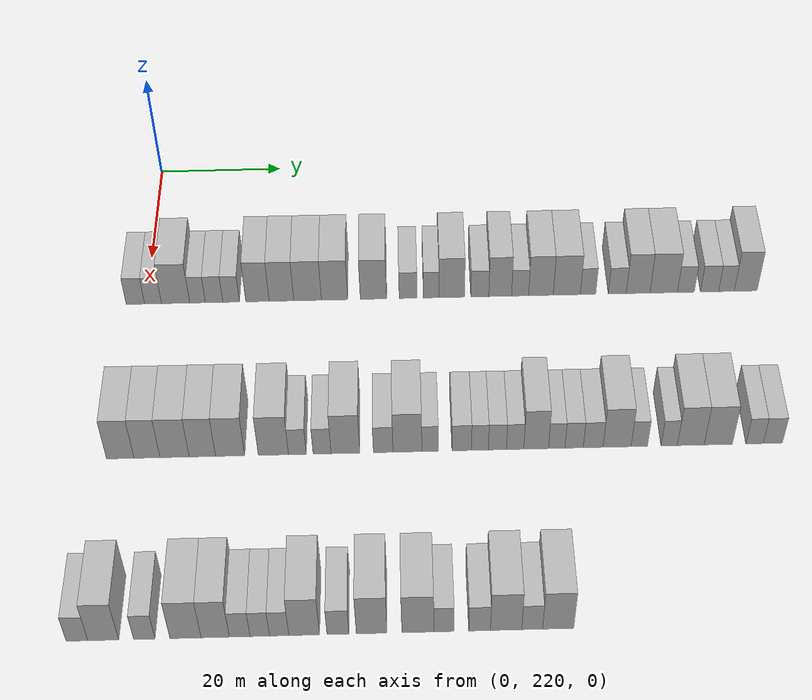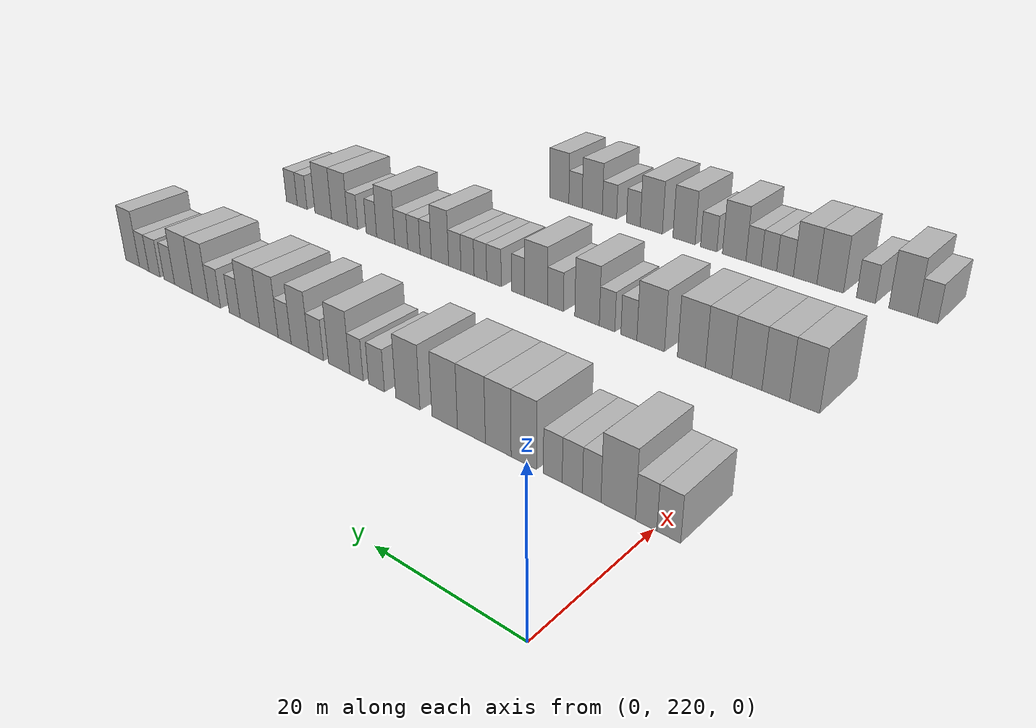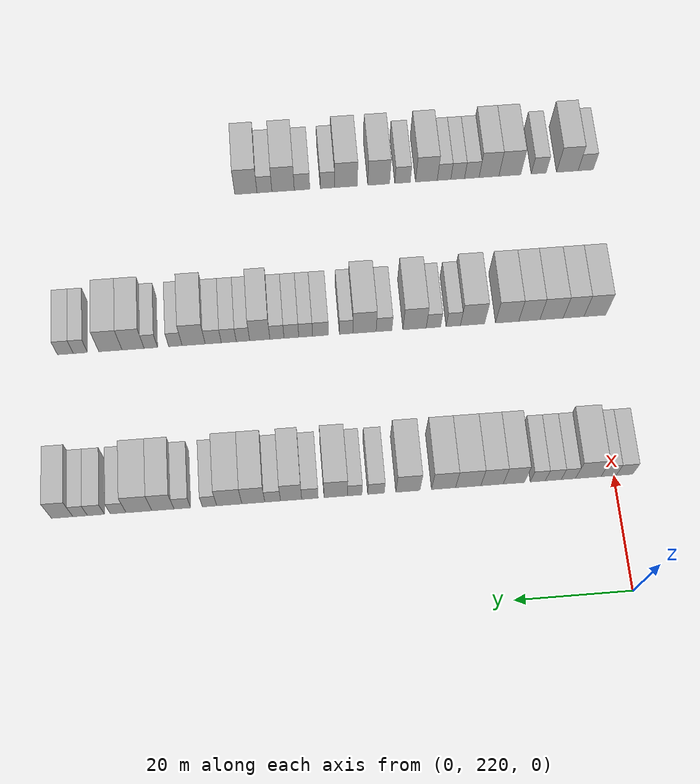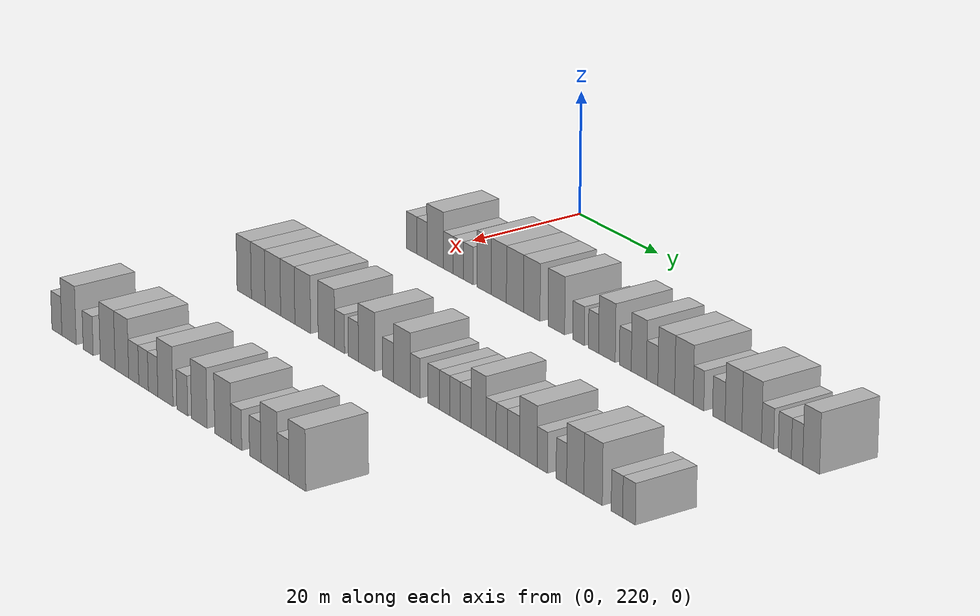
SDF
<sdf version="1.6">
 <world name="default">
  <model name="building_154">
   <static>1</static>
   <pose>25.0000 218.2230 0 0.000000 0.000000 0.000000</pose>
   <link name="link">
    <pose>0 0 3.00 0 0 0</pose>
    <collision name="collision"><geometry><box><size>10.0000 2.8841 6.0000</size></box></geometry></collision>
    <visual name="visual">
     <cast_shadows>0</cast_shadows>
     <geometry><box><size>10.0000 2.8841 6.0000</size></box></geometry>
     <material>
      <script>
       <uri>model://HANNAS_wall/materials/scripts</uri>
       <uri>model://HANNAS_wall/materials/textures</uri>
       <name>vrc/HANNAS_wall</name>
      </script>
     </material>
    </visual>
   </link>
  </model>
  <model name="building_155">
   <static>1</static>
   <pose>25.0000 220.9962 0 0.000000 0.000000 0.000000</pose>
   <link name="link">
    <pose>0 0 3.00 0 0 0</pose>
    <collision name="collision"><geometry><box><size>10.0000 2.6622 6.0000</size></box></geometry></collision>
    <visual name="visual">
     <cast_shadows>0</cast_shadows>
     <geometry><box><size>10.0000 2.6622 6.0000</size></box></geometry>
     <material>
      <script>
       <uri>model://HANNAS_wall/materials/scripts</uri>
       <uri>model://HANNAS_wall/materials/textures</uri>
       <name>vrc/HANNAS_wall</name>
      </script>
     </material>
    </visual>
   </link>
  </model>
  <model name="building_156">
   <static>1</static>
   <pose>25.0000 224.5481 0 0.000000 0.000000 0.000000</pose>
   <link name="link">
    <pose>0 0 4.50 0 0 0</pose>
    <collision name="collision"><geometry><box><size>10.0000 4.4416 9.0000</size></box></geometry></collision>
    <visual name="visual">
     <cast_shadows>0</cast_shadows>
     <geometry><box><size>10.0000 4.4416 9.0000</size></box></geometry>
     <material>
      <script>
       <uri>model://HANNAS_wall/materials/scripts</uri>
       <uri>model://HANNAS_wall/materials/textures</uri>
       <name>vrc/HANNAS_wall</name>
      </script>
     </material>
    </visual>
   </link>
  </model>
  <model name="building_157">
   <static>1</static>
   <pose>25.0000 228.0011 0 0.000000 0.000000 0.000000</pose>
   <link name="link">
    <pose>0 0 3.00 0 0 0</pose>
    <collision name="collision"><geometry><box><size>10.0000 2.4644 6.0000</size></box></geometry></collision>
    <visual name="visual">
     <cast_shadows>0</cast_shadows>
     <geometry><box><size>10.0000 2.4644 6.0000</size></box></geometry>
     <material>
      <script>
       <uri>model://HANNAS_wall/materials/scripts</uri>
       <uri>model://HANNAS_wall/materials/textures</uri>
       <name>vrc/HANNAS_wall</name>
      </script>
     </material>
    </visual>
   </link>
  </model>
  <model name="building_158">
   <static>1</static>
   <pose>25.0000 230.6134 0 0.000000 0.000000 0.000000</pose>
   <link name="link">
    <pose>0 0 3.00 0 0 0</pose>
    <collision name="collision"><geometry><box><size>10.0000 2.7602 6.0000</size></box></geometry></collision>
    <visual name="visual">
     <cast_shadows>0</cast_shadows>
     <geometry><box><size>10.0000 2.7602 6.0000</size></box></geometry>
     <material>
      <script>
       <uri>model://HANNAS_wall/materials/scripts</uri>
       <uri>model://HANNAS_wall/materials/textures</uri>
       <name>vrc/HANNAS_wall</name>
      </script>
     </material>
    </visual>
   </link>
  </model>
  <model name="building_159">
   <static>1</static>
   <pose>25.0000 233.3047 0 0.000000 0.000000 0.000000</pose>
   <link name="link">
    <pose>0 0 3.00 0 0 0</pose>
    <collision name="collision"><geometry><box><size>10.0000 2.6224 6.0000</size></box></geometry></collision>
    <visual name="visual">
     <cast_shadows>0</cast_shadows>
     <geometry><box><size>10.0000 2.6224 6.0000</size></box></geometry>
     <material>
      <script>
       <uri>model://HANNAS_wall/materials/scripts</uri>
       <uri>model://HANNAS_wall/materials/textures</uri>
       <name>vrc/HANNAS_wall</name>
      </script>
     </material>
    </visual>
   </link>
  </model>
  <model name="building_160">
   <static>1</static>
   <pose>25.0000 237.4575 0 0.000000 0.000000 0.000000</pose>
   <link name="link">
    <pose>0 0 4.50 0 0 0</pose>
    <collision name="collision"><geometry><box><size>10.0000 3.6833 9.0000</size></box></geometry></collision>
    <visual name="visual">
     <cast_shadows>0</cast_shadows>
     <geometry><box><size>10.0000 3.6833 9.0000</size></box></geometry>
     <material>
      <script>
       <uri>model://HANNAS_wall/materials/scripts</uri>
       <uri>model://HANNAS_wall/materials/textures</uri>
       <name>vrc/HANNAS_wall</name>
      </script>
     </material>
    </visual>
   </link>
  </model>
  <model name="building_161">
   <static>1</static>
   <pose>25.0000 241.2378 0 0.000000 0.000000 0.000000</pose>
   <link name="link">
    <pose>0 0 4.50 0 0 0</pose>
    <collision name="collision"><geometry><box><size>10.0000 3.8772 9.0000</size></box></geometry></collision>
    <visual name="visual">
     <cast_shadows>0</cast_shadows>
     <geometry><box><size>10.0000 3.8772 9.0000</size></box></geometry>
     <material>
      <script>
       <uri>model://HANNAS_wall/materials/scripts</uri>
       <uri>model://HANNAS_wall/materials/textures</uri>
       <name>vrc/HANNAS_wall</name>
      </script>
     </material>
    </visual>
   </link>
  </model>
  <model name="building_162">
   <static>1</static>
   <pose>25.0000 245.3619 0 0.000000 0.000000 0.000000</pose>
   <link name="link">
    <pose>0 0 4.50 0 0 0</pose>
    <collision name="collision"><geometry><box><size>10.0000 4.3710 9.0000</size></box></geometry></collision>
    <visual name="visual">
     <cast_shadows>0</cast_shadows>
     <geometry><box><size>10.0000 4.3710 9.0000</size></box></geometry>
     <material>
      <script>
       <uri>model://HANNAS_wall/materials/scripts</uri>
       <uri>model://HANNAS_wall/materials/textures</uri>
       <name>vrc/HANNAS_wall</name>
      </script>
     </material>
    </visual>
   </link>
  </model>
  <model name="building_163">
   <static>1</static>
   <pose>25.0000 249.6218 0 0.000000 0.000000 0.000000</pose>
   <link name="link">
    <pose>0 0 4.50 0 0 0</pose>
    <collision name="collision"><geometry><box><size>10.0000 4.1489 9.0000</size></box></geometry></collision>
    <visual name="visual">
     <cast_shadows>0</cast_shadows>
     <geometry><box><size>10.0000 4.1489 9.0000</size></box></geometry>
     <material>
      <script>
       <uri>model://HANNAS_wall/materials/scripts</uri>
       <uri>model://HANNAS_wall/materials/textures</uri>
       <name>vrc/HANNAS_wall</name>
      </script>
     </material>
    </visual>
   </link>
  </model>
  <model name="building_164">
   <static>1</static>
   <pose>25.0000 255.7723 0 0.000000 0.000000 0.000000</pose>
   <link name="link">
    <pose>0 0 4.50 0 0 0</pose>
    <collision name="collision"><geometry><box><size>10.0000 4.1519 9.0000</size></box></geometry></collision>
    <visual name="visual">
     <cast_shadows>0</cast_shadows>
     <geometry><box><size>10.0000 4.1519 9.0000</size></box></geometry>
     <material>
      <script>
       <uri>model://HANNAS_wall/materials/scripts</uri>
       <uri>model://HANNAS_wall/materials/textures</uri>
       <name>vrc/HANNAS_wall</name>
      </script>
     </material>
    </visual>
   </link>
  </model>
  <model name="building_165">
   <static>1</static>
   <pose>25.0000 261.2665 0 0.000000 0.000000 0.000000</pose>
   <link name="link">
    <pose>0 0 3.00 0 0 0</pose>
    <collision name="collision"><geometry><box><size>10.0000 2.8367 6.0000</size></box></geometry></collision>
    <visual name="visual">
     <cast_shadows>0</cast_shadows>
     <geometry><box><size>10.0000 2.8367 6.0000</size></box></geometry>
     <material>
      <script>
       <uri>model://HANNAS_wall/materials/scripts</uri>
       <uri>model://HANNAS_wall/materials/textures</uri>
       <name>vrc/HANNAS_wall</name>
      </script>
     </material>
    </visual>
   </link>
  </model>
  <model name="building_166">
   <static>1</static>
   <pose>25.0000 264.9269 0 0.000000 0.000000 0.000000</pose>
   <link name="link">
    <pose>0 0 3.00 0 0 0</pose>
    <collision name="collision"><geometry><box><size>10.0000 2.4840 6.0000</size></box></geometry></collision>
    <visual name="visual">
     <cast_shadows>0</cast_shadows>
     <geometry><box><size>10.0000 2.4840 6.0000</size></box></geometry>
     <material>
      <script>
       <uri>model://HANNAS_wall/materials/scripts</uri>
       <uri>model://HANNAS_wall/materials/textures</uri>
       <name>vrc/HANNAS_wall</name>
      </script>
     </material>
    </visual>
   </link>
  </model>
  <model name="building_167">
   <static>1</static>
   <pose>25.0000 268.1810 0 0.000000 0.000000 0.000000</pose>
   <link name="link">
    <pose>0 0 4.50 0 0 0</pose>
    <collision name="collision"><geometry><box><size>10.0000 4.0242 9.0000</size></box></geometry></collision>
    <visual name="visual">
     <cast_shadows>0</cast_shadows>
     <geometry><box><size>10.0000 4.0242 9.0000</size></box></geometry>
     <material>
      <script>
       <uri>model://HANNAS_wall/materials/scripts</uri>
       <uri>model://HANNAS_wall/materials/textures</uri>
       <name>vrc/HANNAS_wall</name>
      </script>
     </material>
    </visual>
   </link>
  </model>
  <model name="building_168">
   <static>1</static>
   <pose>25.0000 272.6107 0 0.000000 0.000000 0.000000</pose>
   <link name="link">
    <pose>0 0 3.00 0 0 0</pose>
    <collision name="collision"><geometry><box><size>10.0000 2.8353 6.0000</size></box></geometry></collision>
    <visual name="visual">
     <cast_shadows>0</cast_shadows>
     <geometry><box><size>10.0000 2.8353 6.0000</size></box></geometry>
     <material>
      <script>
       <uri>model://HANNAS_wall/materials/scripts</uri>
       <uri>model://HANNAS_wall/materials/textures</uri>
       <name>vrc/HANNAS_wall</name>
      </script>
     </material>
    </visual>
   </link>
  </model>
  <model name="building_169">
   <static>1</static>
   <pose>25.0000 275.8364 0 0.000000 0.000000 0.000000</pose>
   <link name="link">
    <pose>0 0 4.50 0 0 0</pose>
    <collision name="collision"><geometry><box><size>10.0000 3.6160 9.0000</size></box></geometry></collision>
    <visual name="visual">
     <cast_shadows>0</cast_shadows>
     <geometry><box><size>10.0000 3.6160 9.0000</size></box></geometry>
     <material>
      <script>
       <uri>model://HANNAS_wall/materials/scripts</uri>
       <uri>model://HANNAS_wall/materials/textures</uri>
       <name>vrc/HANNAS_wall</name>
      </script>
     </material>
    </visual>
   </link>
  </model>
  <model name="building_170">
   <static>1</static>
   <pose>25.0000 278.9938 0 0.000000 0.000000 0.000000</pose>
   <link name="link">
    <pose>0 0 3.00 0 0 0</pose>
    <collision name="collision"><geometry><box><size>10.0000 2.6990 6.0000</size></box></geometry></collision>
    <visual name="visual">
     <cast_shadows>0</cast_shadows>
     <geometry><box><size>10.0000 2.6990 6.0000</size></box></geometry>
     <material>
      <script>
       <uri>model://HANNAS_wall/materials/scripts</uri>
       <uri>model://HANNAS_wall/materials/textures</uri>
       <name>vrc/HANNAS_wall</name>
      </script>
     </material>
    </visual>
   </link>
  </model>
  <model name="building_171">
   <static>1</static>
   <pose>25.0000 282.3025 0 0.000000 0.000000 0.000000</pose>
   <link name="link">
    <pose>0 0 4.50 0 0 0</pose>
    <collision name="collision"><geometry><box><size>10.0000 3.9183 9.0000</size></box></geometry></collision>
    <visual name="visual">
     <cast_shadows>0</cast_shadows>
     <geometry><box><size>10.0000 3.9183 9.0000</size></box></geometry>
     <material>
      <script>
       <uri>model://HANNAS_wall/materials/scripts</uri>
       <uri>model://HANNAS_wall/materials/textures</uri>
       <name>vrc/HANNAS_wall</name>
      </script>
     </material>
    </visual>
   </link>
  </model>
  <model name="building_172">
   <static>1</static>
   <pose>25.0000 286.4118 0 0.000000 0.000000 0.000000</pose>
   <link name="link">
    <pose>0 0 4.50 0 0 0</pose>
    <collision name="collision"><geometry><box><size>10.0000 4.3003 9.0000</size></box></geometry></collision>
    <visual name="visual">
     <cast_shadows>0</cast_shadows>
     <geometry><box><size>10.0000 4.3003 9.0000</size></box></geometry>
     <material>
      <script>
       <uri>model://HANNAS_wall/materials/scripts</uri>
       <uri>model://HANNAS_wall/materials/textures</uri>
       <name>vrc/HANNAS_wall</name>
      </script>
     </material>
    </visual>
   </link>
  </model>
  <model name="building_173">
   <static>1</static>
   <pose>25.0000 289.7814 0 0.000000 0.000000 0.000000</pose>
   <link name="link">
    <pose>0 0 3.00 0 0 0</pose>
    <collision name="collision"><geometry><box><size>10.0000 2.4388 6.0000</size></box></geometry></collision>
    <visual name="visual">
     <cast_shadows>0</cast_shadows>
     <geometry><box><size>10.0000 2.4388 6.0000</size></box></geometry>
     <material>
      <script>
       <uri>model://HANNAS_wall/materials/scripts</uri>
       <uri>model://HANNAS_wall/materials/textures</uri>
       <name>vrc/HANNAS_wall</name>
      </script>
     </material>
    </visual>
   </link>
  </model>
  <model name="building_174">
   <static>1</static>
   <pose>25.0000 294.4239 0 0.000000 0.000000 0.000000</pose>
   <link name="link">
    <pose>0 0 3.00 0 0 0</pose>
    <collision name="collision"><geometry><box><size>10.0000 2.8463 6.0000</size></box></geometry></collision>
    <visual name="visual">
     <cast_shadows>0</cast_shadows>
     <geometry><box><size>10.0000 2.8463 6.0000</size></box></geometry>
     <material>
      <script>
       <uri>model://HANNAS_wall/materials/scripts</uri>
       <uri>model://HANNAS_wall/materials/textures</uri>
       <name>vrc/HANNAS_wall</name>
      </script>
     </material>
    </visual>
   </link>
  </model>
  <model name="building_175">
   <static>1</static>
   <pose>25.0000 297.7362 0 0.000000 0.000000 0.000000</pose>
   <link name="link">
    <pose>0 0 4.50 0 0 0</pose>
    <collision name="collision"><geometry><box><size>10.0000 3.7783 9.0000</size></box></geometry></collision>
    <visual name="visual">
     <cast_shadows>0</cast_shadows>
     <geometry><box><size>10.0000 3.7783 9.0000</size></box></geometry>
     <material>
      <script>
       <uri>model://HANNAS_wall/materials/scripts</uri>
       <uri>model://HANNAS_wall/materials/textures</uri>
       <name>vrc/HANNAS_wall</name>
      </script>
     </material>
    </visual>
   </link>
  </model>
  <model name="building_176">
   <static>1</static>
   <pose>25.0000 301.8205 0 0.000000 0.000000 0.000000</pose>
   <link name="link">
    <pose>0 0 4.50 0 0 0</pose>
    <collision name="collision"><geometry><box><size>10.0000 4.3902 9.0000</size></box></geometry></collision>
    <visual name="visual">
     <cast_shadows>0</cast_shadows>
     <geometry><box><size>10.0000 4.3902 9.0000</size></box></geometry>
     <material>
      <script>
       <uri>model://HANNAS_wall/materials/scripts</uri>
       <uri>model://HANNAS_wall/materials/textures</uri>
       <name>vrc/HANNAS_wall</name>
      </script>
     </material>
    </visual>
   </link>
  </model>
  <model name="building_177">
   <static>1</static>
   <pose>25.0000 305.3561 0 0.000000 0.000000 0.000000</pose>
   <link name="link">
    <pose>0 0 3.00 0 0 0</pose>
    <collision name="collision"><geometry><box><size>10.0000 2.6810 6.0000</size></box></geometry></collision>
    <visual name="visual">
     <cast_shadows>0</cast_shadows>
     <geometry><box><size>10.0000 2.6810 6.0000</size></box></geometry>
     <material>
      <script>
       <uri>model://HANNAS_wall/materials/scripts</uri>
       <uri>model://HANNAS_wall/materials/textures</uri>
       <name>vrc/HANNAS_wall</name>
      </script>
     </material>
    </visual>
   </link>
  </model>
  <model name="building_178">
   <static>1</static>
   <pose>25.0000 309.1369 0 0.000000 0.000000 0.000000</pose>
   <link name="link">
    <pose>0 0 3.00 0 0 0</pose>
    <collision name="collision"><geometry><box><size>10.0000 2.8807 6.0000</size></box></geometry></collision>
    <visual name="visual">
     <cast_shadows>0</cast_shadows>
     <geometry><box><size>10.0000 2.8807 6.0000</size></box></geometry>
     <material>
      <script>
       <uri>model://HANNAS_wall/materials/scripts</uri>
       <uri>model://HANNAS_wall/materials/textures</uri>
       <name>vrc/HANNAS_wall</name>
      </script>
     </material>
    </visual>
   </link>
  </model>
  <model name="building_179">
   <static>1</static>
   <pose>25.0000 311.8172 0 0.000000 0.000000 0.000000</pose>
   <link name="link">
    <pose>0 0 3.00 0 0 0</pose>
    <collision name="collision"><geometry><box><size>10.0000 2.4800 6.0000</size></box></geometry></collision>
    <visual name="visual">
     <cast_shadows>0</cast_shadows>
     <geometry><box><size>10.0000 2.4800 6.0000</size></box></geometry>
     <material>
      <script>
       <uri>model://HANNAS_wall/materials/scripts</uri>
       <uri>model://HANNAS_wall/materials/textures</uri>
       <name>vrc/HANNAS_wall</name>
      </script>
     </material>
    </visual>
   </link>
  </model>
  <model name="building_180">
   <static>1</static>
   <pose>25.0000 314.8804 0 0.000000 0.000000 0.000000</pose>
   <link name="link">
    <pose>0 0 4.50 0 0 0</pose>
    <collision name="collision"><geometry><box><size>10.0000 3.6463 9.0000</size></box></geometry></collision>
    <visual name="visual">
     <cast_shadows>0</cast_shadows>
     <geometry><box><size>10.0000 3.6463 9.0000</size></box></geometry>
     <material>
      <script>
       <uri>model://HANNAS_wall/materials/scripts</uri>
       <uri>model://HANNAS_wall/materials/textures</uri>
       <name>vrc/HANNAS_wall</name>
      </script>
     </material>
    </visual>
   </link>
  </model>
  <model name="building_389">
   <static>1</static>
   <pose>55.0000 218.7644 0 0.000000 0.000000 0.000000</pose>
   <link name="link">
    <pose>0 0 4.50 0 0 0</pose>
    <collision name="collision"><geometry><box><size>10.0000 3.9884 9.0000</size></box></geometry></collision>
    <visual name="visual">
     <cast_shadows>0</cast_shadows>
     <geometry><box><size>10.0000 3.9884 9.0000</size></box></geometry>
     <material>
      <script>
       <uri>model://HANNAS_wall/materials/scripts</uri>
       <uri>model://HANNAS_wall/materials/textures</uri>
       <name>vrc/HANNAS_wall</name>
      </script>
     </material>
    </visual>
   </link>
  </model>
  <model name="building_390">
   <static>1</static>
   <pose>55.0000 222.6528 0 0.000000 0.000000 0.000000</pose>
   <link name="link">
    <pose>0 0 4.50 0 0 0</pose>
    <collision name="collision"><geometry><box><size>10.0000 3.7884 9.0000</size></box></geometry></collision>
    <visual name="visual">
     <cast_shadows>0</cast_shadows>
     <geometry><box><size>10.0000 3.7884 9.0000</size></box></geometry>
     <material>
      <script>
       <uri>model://HANNAS_wall/materials/scripts</uri>
       <uri>model://HANNAS_wall/materials/textures</uri>
       <name>vrc/HANNAS_wall</name>
      </script>
     </material>
    </visual>
   </link>
  </model>
  <model name="building_391">
   <static>1</static>
   <pose>55.0000 226.6769 0 0.000000 0.000000 0.000000</pose>
   <link name="link">
    <pose>0 0 4.50 0 0 0</pose>
    <collision name="collision"><geometry><box><size>10.0000 4.2598 9.0000</size></box></geometry></collision>
    <visual name="visual">
     <cast_shadows>0</cast_shadows>
     <geometry><box><size>10.0000 4.2598 9.0000</size></box></geometry>
     <material>
      <script>
       <uri>model://HANNAS_wall/materials/scripts</uri>
       <uri>model://HANNAS_wall/materials/textures</uri>
       <name>vrc/HANNAS_wall</name>
      </script>
     </material>
    </visual>
   </link>
  </model>
  <model name="building_392">
   <static>1</static>
   <pose>55.0000 230.7306 0 0.000000 0.000000 0.000000</pose>
   <link name="link">
    <pose>0 0 4.50 0 0 0</pose>
    <collision name="collision"><geometry><box><size>10.0000 3.8476 9.0000</size></box></geometry></collision>
    <visual name="visual">
     <cast_shadows>0</cast_shadows>
     <geometry><box><size>10.0000 3.8476 9.0000</size></box></geometry>
     <material>
      <script>
       <uri>model://HANNAS_wall/materials/scripts</uri>
       <uri>model://HANNAS_wall/materials/textures</uri>
       <name>vrc/HANNAS_wall</name>
      </script>
     </material>
    </visual>
   </link>
  </model>
  <model name="building_393">
   <static>1</static>
   <pose>55.0000 234.7704 0 0.000000 0.000000 0.000000</pose>
   <link name="link">
    <pose>0 0 4.50 0 0 0</pose>
    <collision name="collision"><geometry><box><size>10.0000 4.2321 9.0000</size></box></geometry></collision>
    <visual name="visual">
     <cast_shadows>0</cast_shadows>
     <geometry><box><size>10.0000 4.2321 9.0000</size></box></geometry>
     <material>
      <script>
       <uri>model://HANNAS_wall/materials/scripts</uri>
       <uri>model://HANNAS_wall/materials/textures</uri>
       <name>vrc/HANNAS_wall</name>
      </script>
     </material>
    </visual>
   </link>
  </model>
  <model name="building_394">
   <static>1</static>
   <pose>55.0000 241.0798 0 0.000000 0.000000 0.000000</pose>
   <link name="link">
    <pose>0 0 4.50 0 0 0</pose>
    <collision name="collision"><geometry><box><size>10.0000 4.3866 9.0000</size></box></geometry></collision>
    <visual name="visual">
     <cast_shadows>0</cast_shadows>
     <geometry><box><size>10.0000 4.3866 9.0000</size></box></geometry>
     <material>
      <script>
       <uri>model://HANNAS_wall/materials/scripts</uri>
       <uri>model://HANNAS_wall/materials/textures</uri>
       <name>vrc/HANNAS_wall</name>
      </script>
     </material>
    </visual>
   </link>
  </model>
  <model name="building_395">
   <static>1</static>
   <pose>55.0000 244.5739 0 0.000000 0.000000 0.000000</pose>
   <link name="link">
    <pose>0 0 3.00 0 0 0</pose>
    <collision name="collision"><geometry><box><size>10.0000 2.6015 6.0000</size></box></geometry></collision>
    <visual name="visual">
     <cast_shadows>0</cast_shadows>
     <geometry><box><size>10.0000 2.6015 6.0000</size></box></geometry>
     <material>
      <script>
       <uri>model://HANNAS_wall/materials/scripts</uri>
       <uri>model://HANNAS_wall/materials/textures</uri>
       <name>vrc/HANNAS_wall</name>
      </script>
     </material>
    </visual>
   </link>
  </model>
  <model name="building_396">
   <static>1</static>
   <pose>55.0000 248.1784 0 0.000000 0.000000 0.000000</pose>
   <link name="link">
    <pose>0 0 3.00 0 0 0</pose>
    <collision name="collision"><geometry><box><size>10.0000 2.6076 6.0000</size></box></geometry></collision>
    <visual name="visual">
     <cast_shadows>0</cast_shadows>
     <geometry><box><size>10.0000 2.6076 6.0000</size></box></geometry>
     <material>
      <script>
       <uri>model://HANNAS_wall/materials/scripts</uri>
       <uri>model://HANNAS_wall/materials/textures</uri>
       <name>vrc/HANNAS_wall</name>
      </script>
     </material>
    </visual>
   </link>
  </model>
  <model name="building_397">
   <static>1</static>
   <pose>55.0000 251.5910 0 0.000000 0.000000 0.000000</pose>
   <link name="link">
    <pose>0 0 4.50 0 0 0</pose>
    <collision name="collision"><geometry><box><size>10.0000 4.2177 9.0000</size></box></geometry></collision>
    <visual name="visual">
     <cast_shadows>0</cast_shadows>
     <geometry><box><size>10.0000 4.2177 9.0000</size></box></geometry>
     <material>
      <script>
       <uri>model://HANNAS_wall/materials/scripts</uri>
       <uri>model://HANNAS_wall/materials/textures</uri>
       <name>vrc/HANNAS_wall</name>
      </script>
     </material>
    </visual>
   </link>
  </model>
  <model name="building_398">
   <static>1</static>
   <pose>55.0000 257.1286 0 0.000000 0.000000 0.000000</pose>
   <link name="link">
    <pose>0 0 3.00 0 0 0</pose>
    <collision name="collision"><geometry><box><size>10.0000 2.8575 6.0000</size></box></geometry></collision>
    <visual name="visual">
     <cast_shadows>0</cast_shadows>
     <geometry><box><size>10.0000 2.8575 6.0000</size></box></geometry>
     <material>
      <script>
       <uri>model://HANNAS_wall/materials/scripts</uri>
       <uri>model://HANNAS_wall/materials/textures</uri>
       <name>vrc/HANNAS_wall</name>
      </script>
     </material>
    </visual>
   </link>
  </model>
  <model name="building_399">
   <static>1</static>
   <pose>55.0000 260.6683 0 0.000000 0.000000 0.000000</pose>
   <link name="link">
    <pose>0 0 4.50 0 0 0</pose>
    <collision name="collision"><geometry><box><size>10.0000 4.2219 9.0000</size></box></geometry></collision>
    <visual name="visual">
     <cast_shadows>0</cast_shadows>
     <geometry><box><size>10.0000 4.2219 9.0000</size></box></geometry>
     <material>
      <script>
       <uri>model://HANNAS_wall/materials/scripts</uri>
       <uri>model://HANNAS_wall/materials/textures</uri>
       <name>vrc/HANNAS_wall</name>
      </script>
     </material>
    </visual>
   </link>
  </model>
  <model name="building_400">
   <static>1</static>
   <pose>55.0000 263.9831 0 0.000000 0.000000 0.000000</pose>
   <link name="link">
    <pose>0 0 3.00 0 0 0</pose>
    <collision name="collision"><geometry><box><size>10.0000 2.4076 6.0000</size></box></geometry></collision>
    <visual name="visual">
     <cast_shadows>0</cast_shadows>
     <geometry><box><size>10.0000 2.4076 6.0000</size></box></geometry>
     <material>
      <script>
       <uri>model://HANNAS_wall/materials/scripts</uri>
       <uri>model://HANNAS_wall/materials/textures</uri>
       <name>vrc/HANNAS_wall</name>
      </script>
     </material>
    </visual>
   </link>
  </model>
  <model name="building_401">
   <static>1</static>
   <pose>55.0000 268.6128 0 0.000000 0.000000 0.000000</pose>
   <link name="link">
    <pose>0 0 3.00 0 0 0</pose>
    <collision name="collision"><geometry><box><size>10.0000 2.8517 6.0000</size></box></geometry></collision>
    <visual name="visual">
     <cast_shadows>0</cast_shadows>
     <geometry><box><size>10.0000 2.8517 6.0000</size></box></geometry>
     <material>
      <script>
       <uri>model://HANNAS_wall/materials/scripts</uri>
       <uri>model://HANNAS_wall/materials/textures</uri>
       <name>vrc/HANNAS_wall</name>
      </script>
     </material>
    </visual>
   </link>
  </model>
  <model name="building_402">
   <static>1</static>
   <pose>55.0000 271.2771 0 0.000000 0.000000 0.000000</pose>
   <link name="link">
    <pose>0 0 3.00 0 0 0</pose>
    <collision name="collision"><geometry><box><size>10.0000 2.4768 6.0000</size></box></geometry></collision>
    <visual name="visual">
     <cast_shadows>0</cast_shadows>
     <geometry><box><size>10.0000 2.4768 6.0000</size></box></geometry>
     <material>
      <script>
       <uri>model://HANNAS_wall/materials/scripts</uri>
       <uri>model://HANNAS_wall/materials/textures</uri>
       <name>vrc/HANNAS_wall</name>
      </script>
     </material>
    </visual>
   </link>
  </model>
  <model name="building_403">
   <static>1</static>
   <pose>55.0000 273.8433 0 0.000000 0.000000 0.000000</pose>
   <link name="link">
    <pose>0 0 3.00 0 0 0</pose>
    <collision name="collision"><geometry><box><size>10.0000 2.6555 6.0000</size></box></geometry></collision>
    <visual name="visual">
     <cast_shadows>0</cast_shadows>
     <geometry><box><size>10.0000 2.6555 6.0000</size></box></geometry>
     <material>
      <script>
       <uri>model://HANNAS_wall/materials/scripts</uri>
       <uri>model://HANNAS_wall/materials/textures</uri>
       <name>vrc/HANNAS_wall</name>
      </script>
     </material>
    </visual>
   </link>
  </model>
  <model name="building_404">
   <static>1</static>
   <pose>55.0000 276.4446 0 0.000000 0.000000 0.000000</pose>
   <link name="link">
    <pose>0 0 3.00 0 0 0</pose>
    <collision name="collision"><geometry><box><size>10.0000 2.5472 6.0000</size></box></geometry></collision>
    <visual name="visual">
     <cast_shadows>0</cast_shadows>
     <geometry><box><size>10.0000 2.5472 6.0000</size></box></geometry>
     <material>
      <script>
       <uri>model://HANNAS_wall/materials/scripts</uri>
       <uri>model://HANNAS_wall/materials/textures</uri>
       <name>vrc/HANNAS_wall</name>
      </script>
     </material>
    </visual>
   </link>
  </model>
  <model name="building_405">
   <static>1</static>
   <pose>55.0000 279.5298 0 0.000000 0.000000 0.000000</pose>
   <link name="link">
    <pose>0 0 4.50 0 0 0</pose>
    <collision name="collision"><geometry><box><size>10.0000 3.6233 9.0000</size></box></geometry></collision>
    <visual name="visual">
     <cast_shadows>0</cast_shadows>
     <geometry><box><size>10.0000 3.6233 9.0000</size></box></geometry>
     <material>
      <script>
       <uri>model://HANNAS_wall/materials/scripts</uri>
       <uri>model://HANNAS_wall/materials/textures</uri>
       <name>vrc/HANNAS_wall</name>
      </script>
     </material>
    </visual>
   </link>
  </model>
  <model name="building_406">
   <static>1</static>
   <pose>55.0000 282.5518 0 0.000000 0.000000 0.000000</pose>
   <link name="link">
    <pose>0 0 3.00 0 0 0</pose>
    <collision name="collision"><geometry><box><size>10.0000 2.4206 6.0000</size></box></geometry></collision>
    <visual name="visual">
     <cast_shadows>0</cast_shadows>
     <geometry><box><size>10.0000 2.4206 6.0000</size></box></geometry>
     <material>
      <script>
       <uri>model://HANNAS_wall/materials/scripts</uri>
       <uri>model://HANNAS_wall/materials/textures</uri>
       <name>vrc/HANNAS_wall</name>
      </script>
     </material>
    </visual>
   </link>
  </model>
  <model name="building_407">
   <static>1</static>
   <pose>55.0000 285.1061 0 0.000000 0.000000 0.000000</pose>
   <link name="link">
    <pose>0 0 3.00 0 0 0</pose>
    <collision name="collision"><geometry><box><size>10.0000 2.6879 6.0000</size></box></geometry></collision>
    <visual name="visual">
     <cast_shadows>0</cast_shadows>
     <geometry><box><size>10.0000 2.6879 6.0000</size></box></geometry>
     <material>
      <script>
       <uri>model://HANNAS_wall/materials/scripts</uri>
       <uri>model://HANNAS_wall/materials/textures</uri>
       <name>vrc/HANNAS_wall</name>
      </script>
     </material>
    </visual>
   </link>
  </model>
  <model name="building_408">
   <static>1</static>
   <pose>55.0000 287.8997 0 0.000000 0.000000 0.000000</pose>
   <link name="link">
    <pose>0 0 3.00 0 0 0</pose>
    <collision name="collision"><geometry><box><size>10.0000 2.8993 6.0000</size></box></geometry></collision>
    <visual name="visual">
     <cast_shadows>0</cast_shadows>
     <geometry><box><size>10.0000 2.8993 6.0000</size></box></geometry>
     <material>
      <script>
       <uri>model://HANNAS_wall/materials/scripts</uri>
       <uri>model://HANNAS_wall/materials/textures</uri>
       <name>vrc/HANNAS_wall</name>
      </script>
     </material>
    </visual>
   </link>
  </model>
  <model name="building_409">
   <static>1</static>
   <pose>55.0000 291.4169 0 0.000000 0.000000 0.000000</pose>
   <link name="link">
    <pose>0 0 4.50 0 0 0</pose>
    <collision name="collision"><geometry><box><size>10.0000 4.1351 9.0000</size></box></geometry></collision>
    <visual name="visual">
     <cast_shadows>0</cast_shadows>
     <geometry><box><size>10.0000 4.1351 9.0000</size></box></geometry>
     <material>
      <script>
       <uri>model://HANNAS_wall/materials/scripts</uri>
       <uri>model://HANNAS_wall/materials/textures</uri>
       <name>vrc/HANNAS_wall</name>
      </script>
     </material>
    </visual>
   </link>
  </model>
  <model name="building_410">
   <static>1</static>
   <pose>55.0000 294.6898 0 0.000000 0.000000 0.000000</pose>
   <link name="link">
    <pose>0 0 3.00 0 0 0</pose>
    <collision name="collision"><geometry><box><size>10.0000 2.4106 6.0000</size></box></geometry></collision>
    <visual name="visual">
     <cast_shadows>0</cast_shadows>
     <geometry><box><size>10.0000 2.4106 6.0000</size></box></geometry>
     <material>
      <script>
       <uri>model://HANNAS_wall/materials/scripts</uri>
       <uri>model://HANNAS_wall/materials/textures</uri>
       <name>vrc/HANNAS_wall</name>
      </script>
     </material>
    </visual>
   </link>
  </model>
  <model name="building_411">
   <static>1</static>
   <pose>55.0000 299.0987 0 0.000000 0.000000 0.000000</pose>
   <link name="link">
    <pose>0 0 3.00 0 0 0</pose>
    <collision name="collision"><geometry><box><size>10.0000 2.4072 6.0000</size></box></geometry></collision>
    <visual name="visual">
     <cast_shadows>0</cast_shadows>
     <geometry><box><size>10.0000 2.4072 6.0000</size></box></geometry>
     <material>
      <script>
       <uri>model://HANNAS_wall/materials/scripts</uri>
       <uri>model://HANNAS_wall/materials/textures</uri>
       <name>vrc/HANNAS_wall</name>
      </script>
     </material>
    </visual>
   </link>
  </model>
  <model name="building_412">
   <static>1</static>
   <pose>55.0000 302.2750 0 0.000000 0.000000 0.000000</pose>
   <link name="link">
    <pose>0 0 4.50 0 0 0</pose>
    <collision name="collision"><geometry><box><size>10.0000 3.9455 9.0000</size></box></geometry></collision>
    <visual name="visual">
     <cast_shadows>0</cast_shadows>
     <geometry><box><size>10.0000 3.9455 9.0000</size></box></geometry>
     <material>
      <script>
       <uri>model://HANNAS_wall/materials/scripts</uri>
       <uri>model://HANNAS_wall/materials/textures</uri>
       <name>vrc/HANNAS_wall</name>
      </script>
     </material>
    </visual>
   </link>
  </model>
  <model name="building_413">
   <static>1</static>
   <pose>55.0000 306.3298 0 0.000000 0.000000 0.000000</pose>
   <link name="link">
    <pose>0 0 4.50 0 0 0</pose>
    <collision name="collision"><geometry><box><size>10.0000 4.1641 9.0000</size></box></geometry></collision>
    <visual name="visual">
     <cast_shadows>0</cast_shadows>
     <geometry><box><size>10.0000 4.1641 9.0000</size></box></geometry>
     <material>
      <script>
       <uri>model://HANNAS_wall/materials/scripts</uri>
       <uri>model://HANNAS_wall/materials/textures</uri>
       <name>vrc/HANNAS_wall</name>
      </script>
     </material>
    </visual>
   </link>
  </model>
  <model name="building_414">
   <static>1</static>
   <pose>55.0000 311.6885 0 0.000000 0.000000 0.000000</pose>
   <link name="link">
    <pose>0 0 3.00 0 0 0</pose>
    <collision name="collision"><geometry><box><size>10.0000 2.5532 6.0000</size></box></geometry></collision>
    <visual name="visual">
     <cast_shadows>0</cast_shadows>
     <geometry><box><size>10.0000 2.5532 6.0000</size></box></geometry>
     <material>
      <script>
       <uri>model://HANNAS_wall/materials/scripts</uri>
       <uri>model://HANNAS_wall/materials/textures</uri>
       <name>vrc/HANNAS_wall</name>
      </script>
     </material>
    </visual>
   </link>
  </model>
  <model name="building_415">
   <static>1</static>
   <pose>55.0000 314.3787 0 0.000000 0.000000 0.000000</pose>
   <link name="link">
    <pose>0 0 3.00 0 0 0</pose>
    <collision name="collision"><geometry><box><size>10.0000 2.8274 6.0000</size></box></geometry></collision>
    <visual name="visual">
     <cast_shadows>0</cast_shadows>
     <geometry><box><size>10.0000 2.8274 6.0000</size></box></geometry>
     <material>
      <script>
       <uri>model://HANNAS_wall/materials/scripts</uri>
       <uri>model://HANNAS_wall/materials/textures</uri>
       <name>vrc/HANNAS_wall</name>
      </script>
     </material>
    </visual>
   </link>
  </model>
  <model name="building_617">
   <static>1</static>
   <pose>85.0000 215.9104 0 0.000000 0.000000 0.000000</pose>
   <link name="link">
    <pose>0 0 3.00 0 0 0</pose>
    <collision name="collision"><geometry><box><size>10.0000 2.8955 6.0000</size></box></geometry></collision>
    <visual name="visual">
     <cast_shadows>0</cast_shadows>
     <geometry><box><size>10.0000 2.8955 6.0000</size></box></geometry>
     <material>
      <script>
       <uri>model://HANNAS_wall/materials/scripts</uri>
       <uri>model://HANNAS_wall/materials/textures</uri>
       <name>vrc/HANNAS_wall</name>
      </script>
     </material>
    </visual>
   </link>
  </model>
  <model name="building_618">
   <static>1</static>
   <pose>85.0000 219.4191 0 0.000000 0.000000 0.000000</pose>
   <link name="link">
    <pose>0 0 4.50 0 0 0</pose>
    <collision name="collision"><geometry><box><size>10.0000 4.1219 9.0000</size></box></geometry></collision>
    <visual name="visual">
     <cast_shadows>0</cast_shadows>
     <geometry><box><size>10.0000 4.1219 9.0000</size></box></geometry>
     <material>
      <script>
       <uri>model://HANNAS_wall/materials/scripts</uri>
       <uri>model://HANNAS_wall/materials/textures</uri>
       <name>vrc/HANNAS_wall</name>
      </script>
     </material>
    </visual>
   </link>
  </model>
  <model name="building_619">
   <static>1</static>
   <pose>85.0000 224.9019 0 0.000000 0.000000 0.000000</pose>
   <link name="link">
    <pose>0 0 3.00 0 0 0</pose>
    <collision name="collision"><geometry><box><size>10.0000 2.8438 6.0000</size></box></geometry></collision>
    <visual name="visual">
     <cast_shadows>0</cast_shadows>
     <geometry><box><size>10.0000 2.8438 6.0000</size></box></geometry>
     <material>
      <script>
       <uri>model://HANNAS_wall/materials/scripts</uri>
       <uri>model://HANNAS_wall/materials/textures</uri>
       <name>vrc/HANNAS_wall</name>
      </script>
     </material>
    </visual>
   </link>
  </model>
  <model name="building_620">
   <static>1</static>
   <pose>85.0000 230.4097 0 0.000000 0.000000 0.000000</pose>
   <link name="link">
    <pose>0 0 4.50 0 0 0</pose>
    <collision name="collision"><geometry><box><size>10.0000 4.1717 9.0000</size></box></geometry></collision>
    <visual name="visual">
     <cast_shadows>0</cast_shadows>
     <geometry><box><size>10.0000 4.1717 9.0000</size></box></geometry>
     <material>
      <script>
       <uri>model://HANNAS_wall/materials/scripts</uri>
       <uri>model://HANNAS_wall/materials/textures</uri>
       <name>vrc/HANNAS_wall</name>
      </script>
     </material>
    </visual>
   </link>
  </model>
  <model name="building_621">
   <static>1</static>
   <pose>85.0000 234.3890 0 0.000000 0.000000 0.000000</pose>
   <link name="link">
    <pose>0 0 4.50 0 0 0</pose>
    <collision name="collision"><geometry><box><size>10.0000 3.7870 9.0000</size></box></geometry></collision>
    <visual name="visual">
     <cast_shadows>0</cast_shadows>
     <geometry><box><size>10.0000 3.7870 9.0000</size></box></geometry>
     <material>
      <script>
       <uri>model://HANNAS_wall/materials/scripts</uri>
       <uri>model://HANNAS_wall/materials/textures</uri>
       <name>vrc/HANNAS_wall</name>
      </script>
     </material>
    </visual>
   </link>
  </model>
  <model name="building_622">
   <static>1</static>
   <pose>85.0000 237.6678 0 0.000000 0.000000 0.000000</pose>
   <link name="link">
    <pose>0 0 3.00 0 0 0</pose>
    <collision name="collision"><geometry><box><size>10.0000 2.7705 6.0000</size></box></geometry></collision>
    <visual name="visual">
     <cast_shadows>0</cast_shadows>
     <geometry><box><size>10.0000 2.7705 6.0000</size></box></geometry>
     <material>
      <script>
       <uri>model://HANNAS_wall/materials/scripts</uri>
       <uri>model://HANNAS_wall/materials/textures</uri>
       <name>vrc/HANNAS_wall</name>
      </script>
     </material>
    </visual>
   </link>
  </model>
  <model name="building_623">
   <static>1</static>
   <pose>85.0000 240.3601 0 0.000000 0.000000 0.000000</pose>
   <link name="link">
    <pose>0 0 3.00 0 0 0</pose>
    <collision name="collision"><geometry><box><size>10.0000 2.6143 6.0000</size></box></geometry></collision>
    <visual name="visual">
     <cast_shadows>0</cast_shadows>
     <geometry><box><size>10.0000 2.6143 6.0000</size></box></geometry>
     <material>
      <script>
       <uri>model://HANNAS_wall/materials/scripts</uri>
       <uri>model://HANNAS_wall/materials/textures</uri>
       <name>vrc/HANNAS_wall</name>
      </script>
     </material>
    </visual>
   </link>
  </model>
  <model name="building_624">
   <static>1</static>
   <pose>85.0000 242.9621 0 0.000000 0.000000 0.000000</pose>
   <link name="link">
    <pose>0 0 3.00 0 0 0</pose>
    <collision name="collision"><geometry><box><size>10.0000 2.5897 6.0000</size></box></geometry></collision>
    <visual name="visual">
     <cast_shadows>0</cast_shadows>
     <geometry><box><size>10.0000 2.5897 6.0000</size></box></geometry>
     <material>
      <script>
       <uri>model://HANNAS_wall/materials/scripts</uri>
       <uri>model://HANNAS_wall/materials/textures</uri>
       <name>vrc/HANNAS_wall</name>
      </script>
     </material>
    </visual>
   </link>
  </model>
  <model name="building_625">
   <static>1</static>
   <pose>85.0000 246.3182 0 0.000000 0.000000 0.000000</pose>
   <link name="link">
    <pose>0 0 4.50 0 0 0</pose>
    <collision name="collision"><geometry><box><size>10.0000 4.1224 9.0000</size></box></geometry></collision>
    <visual name="visual">
     <cast_shadows>0</cast_shadows>
     <geometry><box><size>10.0000 4.1224 9.0000</size></box></geometry>
     <material>
      <script>
       <uri>model://HANNAS_wall/materials/scripts</uri>
       <uri>model://HANNAS_wall/materials/textures</uri>
       <name>vrc/HANNAS_wall</name>
      </script>
     </material>
    </visual>
   </link>
  </model>
  <model name="building_626">
   <static>1</static>
   <pose>85.0000 250.8460 0 0.000000 0.000000 0.000000</pose>
   <link name="link">
    <pose>0 0 3.00 0 0 0</pose>
    <collision name="collision"><geometry><box><size>10.0000 2.9331 6.0000</size></box></geometry></collision>
    <visual name="visual">
     <cast_shadows>0</cast_shadows>
     <geometry><box><size>10.0000 2.9331 6.0000</size></box></geometry>
     <material>
      <script>
       <uri>model://HANNAS_wall/materials/scripts</uri>
       <uri>model://HANNAS_wall/materials/textures</uri>
       <name>vrc/HANNAS_wall</name>
      </script>
     </material>
    </visual>
   </link>
  </model>
  <model name="building_627">
   <static>1</static>
   <pose>85.0000 255.3767 0 0.000000 0.000000 0.000000</pose>
   <link name="link">
    <pose>0 0 4.50 0 0 0</pose>
    <collision name="collision"><geometry><box><size>10.0000 4.1283 9.0000</size></box></geometry></collision>
    <visual name="visual">
     <cast_shadows>0</cast_shadows>
     <geometry><box><size>10.0000 4.1283 9.0000</size></box></geometry>
     <material>
      <script>
       <uri>model://HANNAS_wall/materials/scripts</uri>
       <uri>model://HANNAS_wall/materials/textures</uri>
       <name>vrc/HANNAS_wall</name>
      </script>
     </material>
    </visual>
   </link>
  </model>
  <model name="building_628">
   <static>1</static>
   <pose>85.0000 261.5838 0 0.000000 0.000000 0.000000</pose>
   <link name="link">
    <pose>0 0 4.50 0 0 0</pose>
    <collision name="collision"><geometry><box><size>10.0000 4.2860 9.0000</size></box></geometry></collision>
    <visual name="visual">
     <cast_shadows>0</cast_shadows>
     <geometry><box><size>10.0000 4.2860 9.0000</size></box></geometry>
     <material>
      <script>
       <uri>model://HANNAS_wall/materials/scripts</uri>
       <uri>model://HANNAS_wall/materials/textures</uri>
       <name>vrc/HANNAS_wall</name>
      </script>
     </material>
    </visual>
   </link>
  </model>
  <model name="building_629">
   <static>1</static>
   <pose>85.0000 265.0824 0 0.000000 0.000000 0.000000</pose>
   <link name="link">
    <pose>0 0 3.00 0 0 0</pose>
    <collision name="collision"><geometry><box><size>10.0000 2.7112 6.0000</size></box></geometry></collision>
    <visual name="visual">
     <cast_shadows>0</cast_shadows>
     <geometry><box><size>10.0000 2.7112 6.0000</size></box></geometry>
     <material>
      <script>
       <uri>model://HANNAS_wall/materials/scripts</uri>
       <uri>model://HANNAS_wall/materials/textures</uri>
       <name>vrc/HANNAS_wall</name>
      </script>
     </material>
    </visual>
   </link>
  </model>
  <model name="building_630">
   <static>1</static>
   <pose>85.0000 269.9015 0 0.000000 0.000000 0.000000</pose>
   <link name="link">
    <pose>0 0 3.00 0 0 0</pose>
    <collision name="collision"><geometry><box><size>10.0000 2.9270 6.0000</size></box></geometry></collision>
    <visual name="visual">
     <cast_shadows>0</cast_shadows>
     <geometry><box><size>10.0000 2.9270 6.0000</size></box></geometry>
     <material>
      <script>
       <uri>model://HANNAS_wall/materials/scripts</uri>
       <uri>model://HANNAS_wall/materials/textures</uri>
       <name>vrc/HANNAS_wall</name>
      </script>
     </material>
    </visual>
   </link>
  </model>
  <model name="building_631">
   <static>1</static>
   <pose>85.0000 273.4717 0 0.000000 0.000000 0.000000</pose>
   <link name="link">
    <pose>0 0 4.50 0 0 0</pose>
    <collision name="collision"><geometry><box><size>10.0000 4.2134 9.0000</size></box></geometry></collision>
    <visual name="visual">
     <cast_shadows>0</cast_shadows>
     <geometry><box><size>10.0000 4.2134 9.0000</size></box></geometry>
     <material>
      <script>
       <uri>model://HANNAS_wall/materials/scripts</uri>
       <uri>model://HANNAS_wall/materials/textures</uri>
       <name>vrc/HANNAS_wall</name>
      </script>
     </material>
    </visual>
   </link>
  </model>
  <model name="building_632">
   <static>1</static>
   <pose>85.0000 276.9874 0 0.000000 0.000000 0.000000</pose>
   <link name="link">
    <pose>0 0 3.00 0 0 0</pose>
    <collision name="collision"><geometry><box><size>10.0000 2.8180 6.0000</size></box></geometry></collision>
    <visual name="visual">
     <cast_shadows>0</cast_shadows>
     <geometry><box><size>10.0000 2.8180 6.0000</size></box></geometry>
     <material>
      <script>
       <uri>model://HANNAS_wall/materials/scripts</uri>
       <uri>model://HANNAS_wall/materials/textures</uri>
       <name>vrc/HANNAS_wall</name>
      </script>
     </material>
    </visual>
   </link>
  </model>
  <model name="building_633">
   <static>1</static>
   <pose>85.0000 280.4918 0 0.000000 0.000000 0.000000</pose>
   <link name="link">
    <pose>0 0 4.50 0 0 0</pose>
    <collision name="collision"><geometry><box><size>10.0000 4.1908 9.0000</size></box></geometry></collision>
    <visual name="visual">
     <cast_shadows>0</cast_shadows>
     <geometry><box><size>10.0000 4.1908 9.0000</size></box></geometry>
     <material>
      <script>
       <uri>model://HANNAS_wall/materials/scripts</uri>
       <uri>model://HANNAS_wall/materials/textures</uri>
       <name>vrc/HANNAS_wall</name>
      </script>
     </material>
    </visual>
   </link>
  </model>
 </world>
</sdf>
